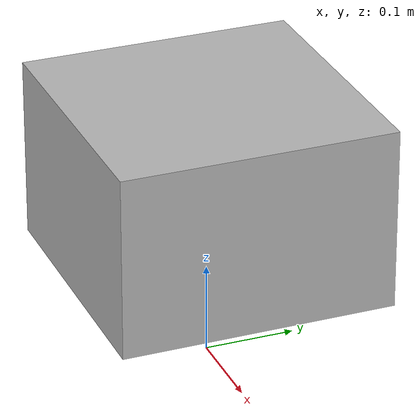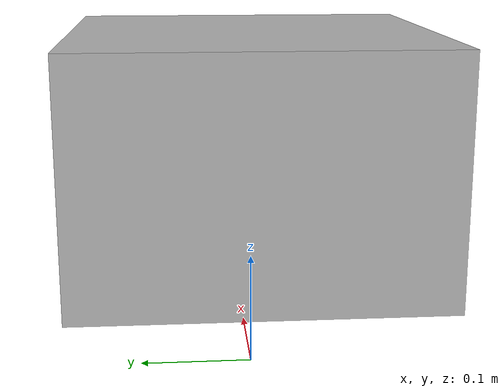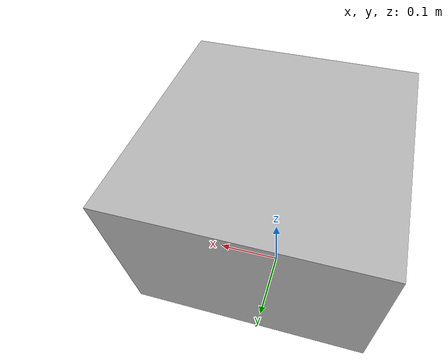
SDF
<?xml version="1.0" ?>
<sdf version="1.9">
  <model name="imu_test">
    <static>false</static>

    <link name="base_link">
      <pose>0 0 0.2 0 0 0</pose>

      <inertial>
        <mass>1.0</mass>
        <inertia>
          <ixx>0.1</ixx>
          <iyy>0.1</iyy>
          <izz>0.1</izz>
          <ixy>0.0</ixy>
          <ixz>0.0</ixz>
          <iyz>0.0</iyz>
        </inertia>
      </inertial>

      <collision name="collision">
        <geometry>
          <box>
            <size>0.3 0.3 0.2</size>
          </box>
        </geometry>
      </collision>

      <visual name="visual">
        <geometry>
          <box>
            <size>0.3 0.3 0.2</size>
          </box>
        </geometry>
      </visual>

      <sensor name="imu_sensor" type="imu">
        <pose>0 0 0 0 0 0</pose>
        <always_on>true</always_on>
        <update_rate>50</update_rate>
        <topic>/imu</topic>
        <imu>
          <angular_velocity>
            <x>
              <noise type="gaussian">
                <mean>0.0</mean>
                <stddev>0.0002</stddev>
              </noise>
            </x>
            <y>
              <noise type="gaussian">
                <mean>0.0</mean>
                <stddev>0.0002</stddev>
              </noise>
            </y>
            <z>
              <noise type="gaussian">
                <mean>0.0</mean>
                <stddev>0.0002</stddev>
              </noise>
            </z>
          </angular_velocity>
          <linear_acceleration>
            <x>
              <noise type="gaussian">
                <mean>0.0</mean>
                <stddev>0.017</stddev>
              </noise>
            </x>
            <y>
              <noise type="gaussian">
                <mean>0.0</mean>
                <stddev>0.017</stddev>
              </noise>
            </y>
            <z>
              <noise type="gaussian">
                <mean>0.0</mean>
                <stddev>0.017</stddev>
              </noise>
            </z>
          </linear_acceleration>
        </imu>
      </sensor>
    </link>
  </model>
</sdf>
